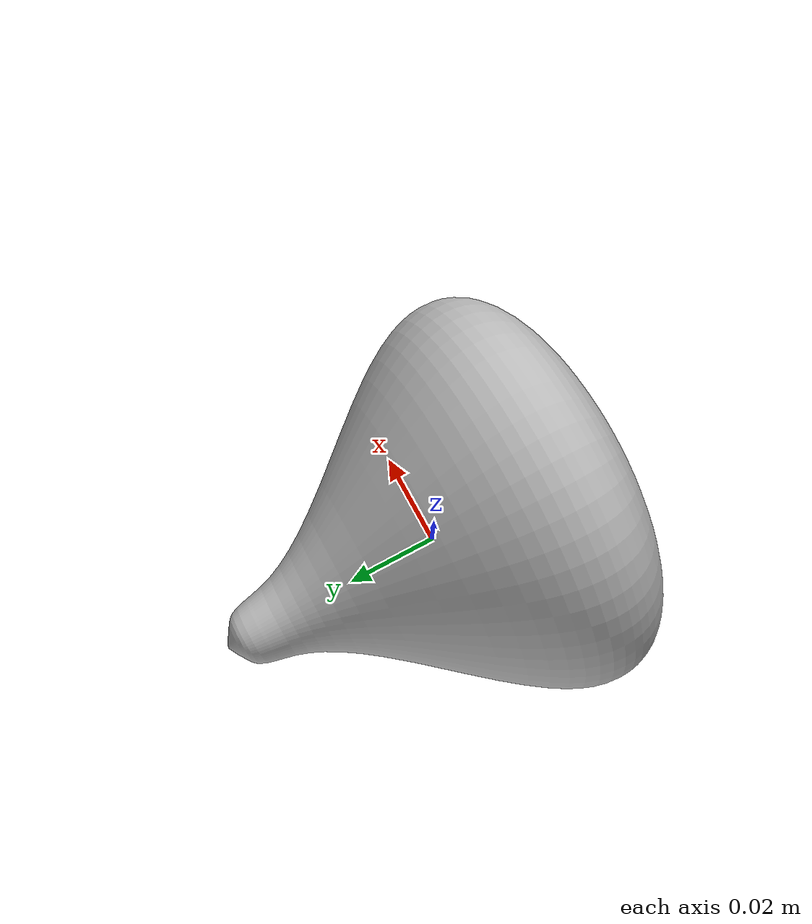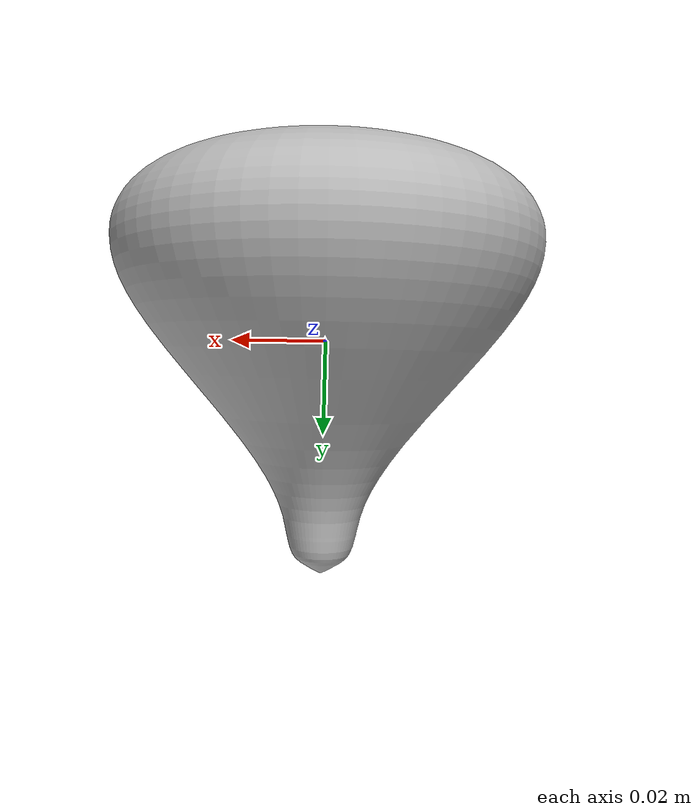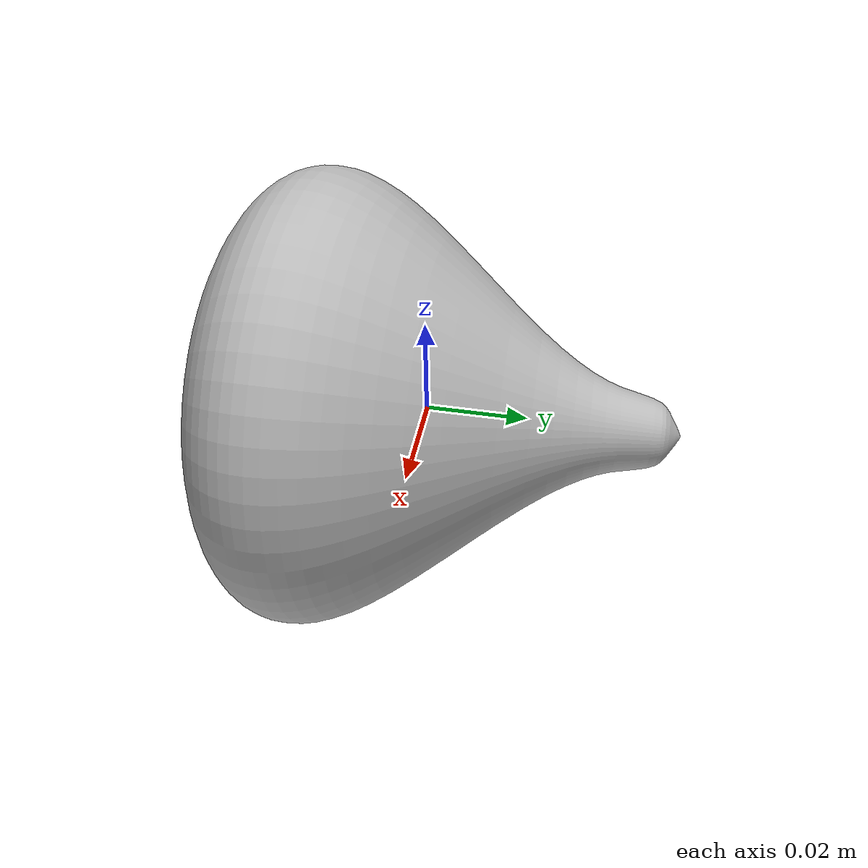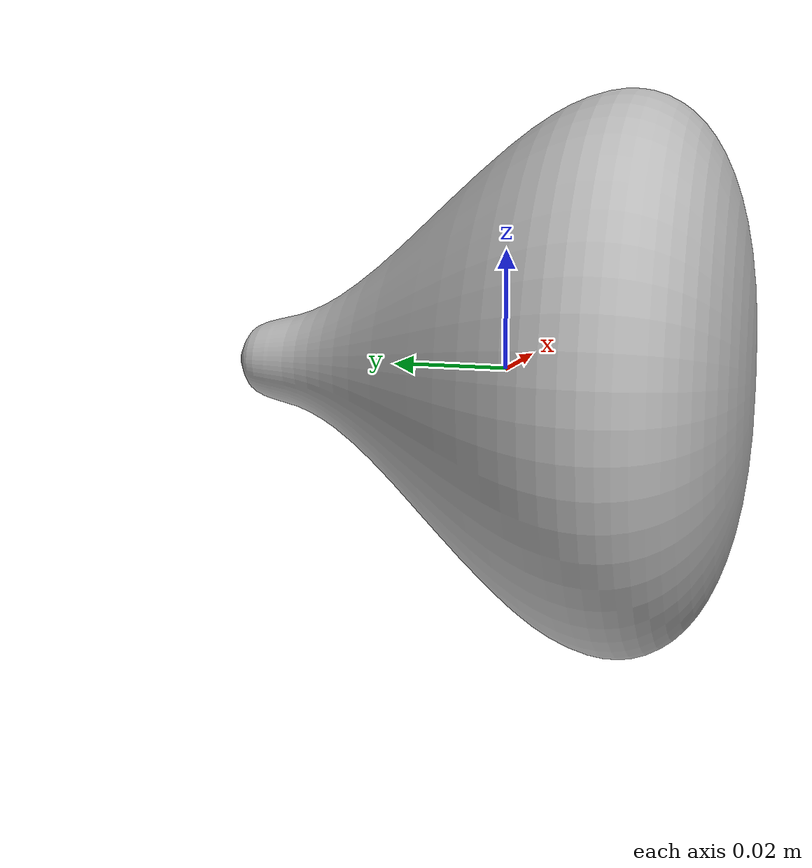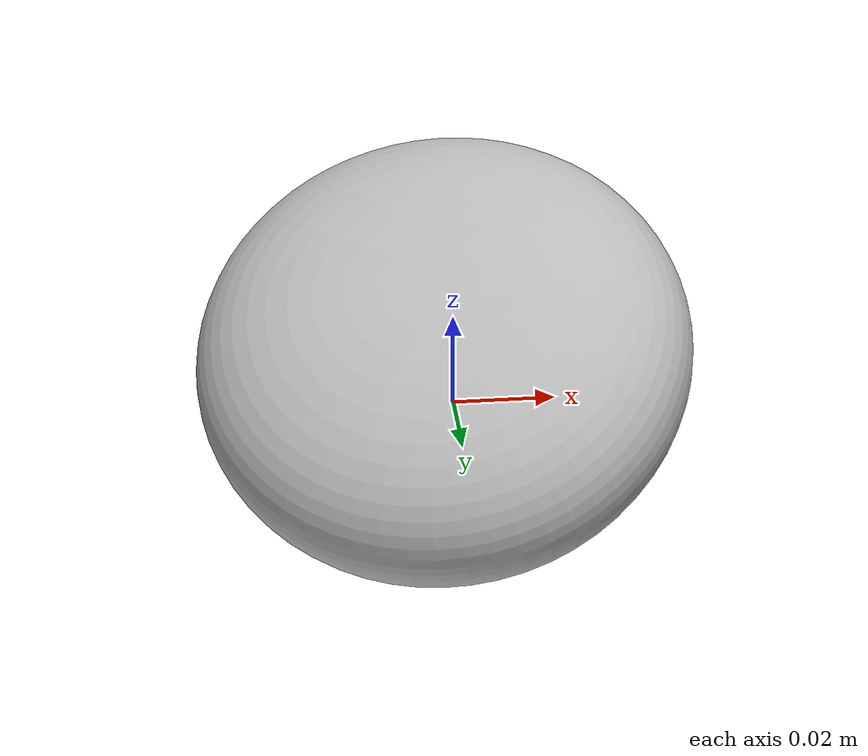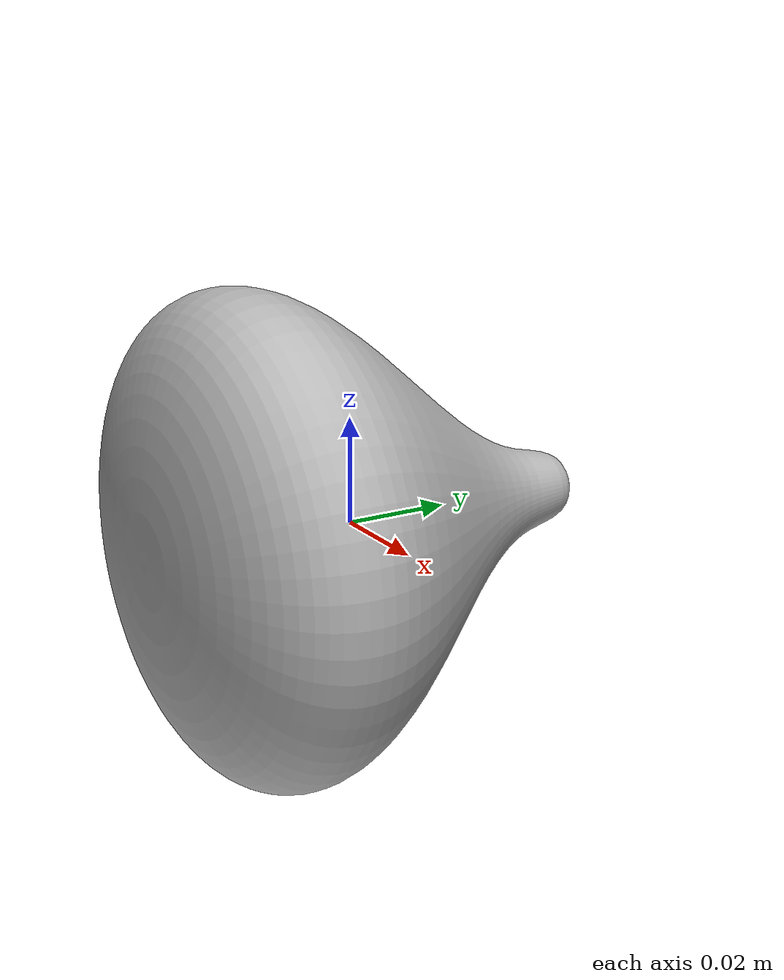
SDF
<?xml version="1.0"?>
<sdf version='1.6'>
  <model name='onion'>
    <link name='base_link'>
      <pose frame=''>0 0 0 0 0 0</pose>
      <inertial>
        <pose frame=''>0 0 0 0 3.14 0</pose>
        <mass>0.14</mass>
        <inertia>
          <ixx>0.000254</ixx>
          <ixy>0</ixy>
          <ixz>0</ixz>
          <iyy>0.000254</iyy>
          <iyz>0</iyz>
          <izz>0.000254</izz>
        </inertia>
      </inertial>
      <collision name='base_link_fixed_joint_lump__box_collision_collision'>
        <pose frame=''>0 0 0 0 3.14 0</pose>
        <geometry>
          <mesh>
            <scale>1 1 1</scale>
            <uri>model://custom_onion.DAE</uri>
          </mesh>
        </geometry>
      </collision>
      <visual name='base_link_visual'>
        <pose frame=''>0 0 0 0 3.14 0</pose>
        <geometry>
          <mesh>
            <scale>1 1 1</scale>
            <uri>model://custom_onion.DAE</uri>
          </mesh>
        </geometry>
        <material>
          <script>
            <uri>__default__</uri>
            <name>__default__</name>
          </script>
        </material>
      </visual>
      <gravity>1</gravity>
      <velocity_decay/>
      <self_collide>0</self_collide>
    </link>
	<plugin name="model_push" filename="libmodel_push.so"/>
  </model>
</sdf>
